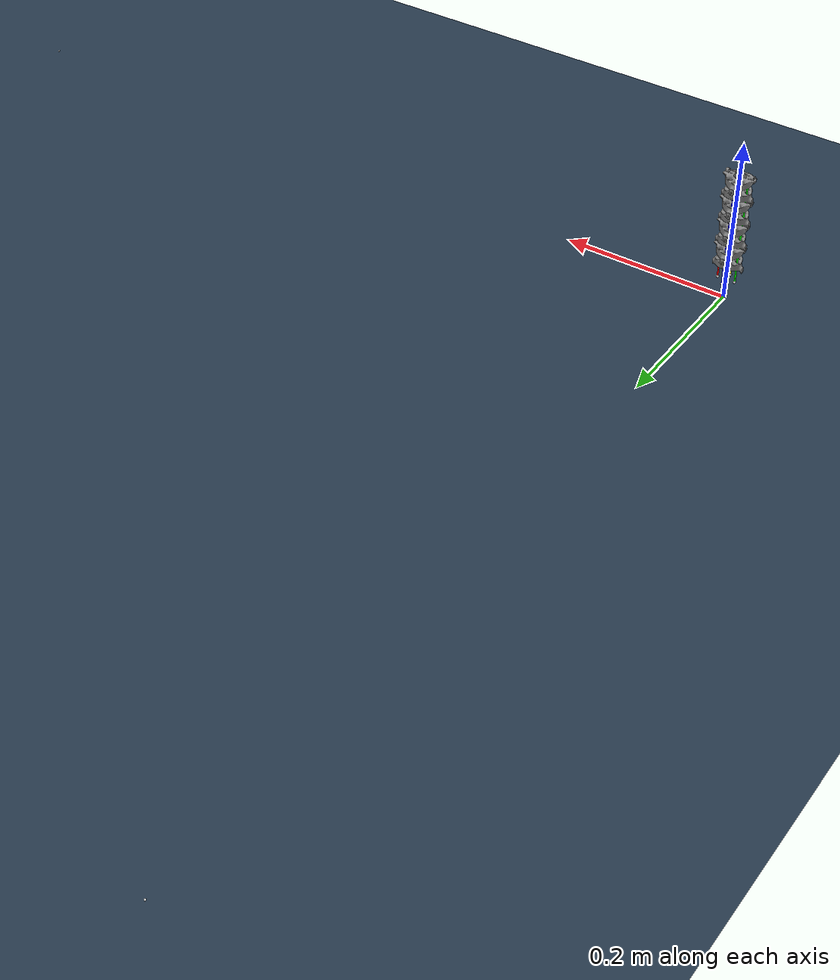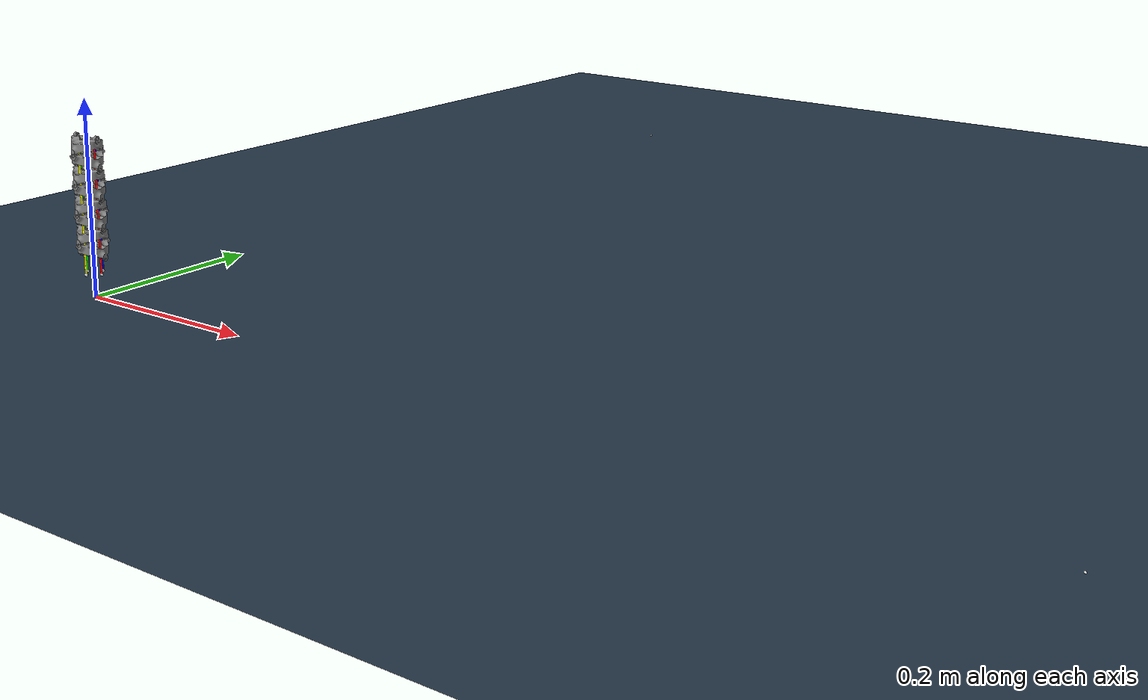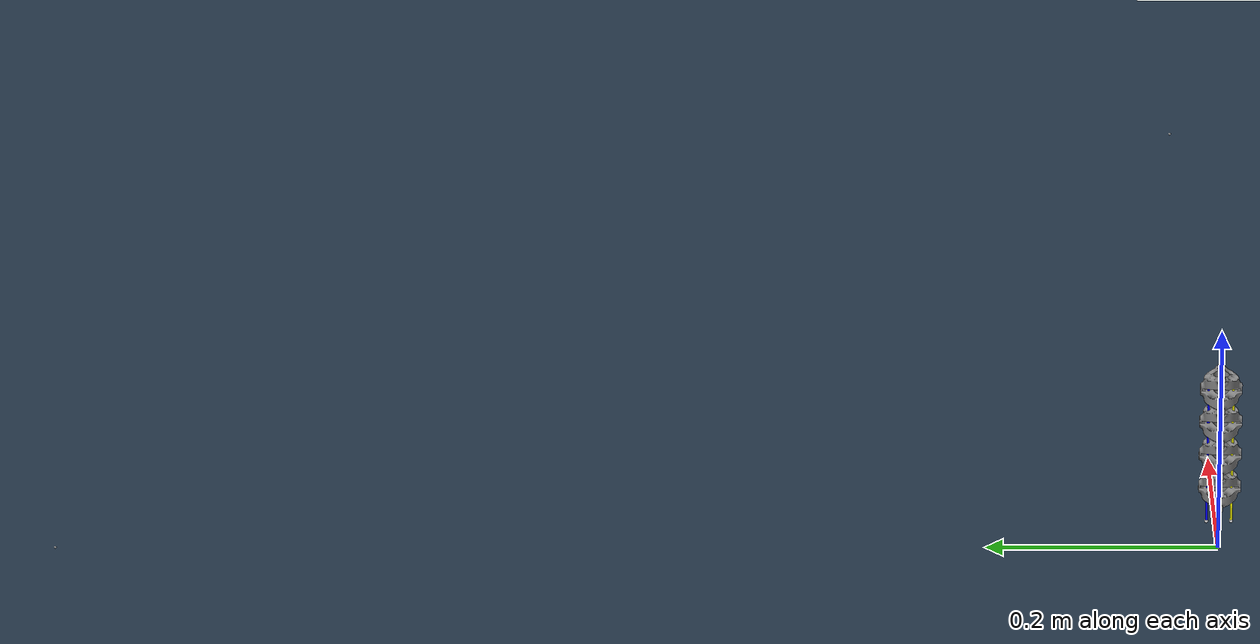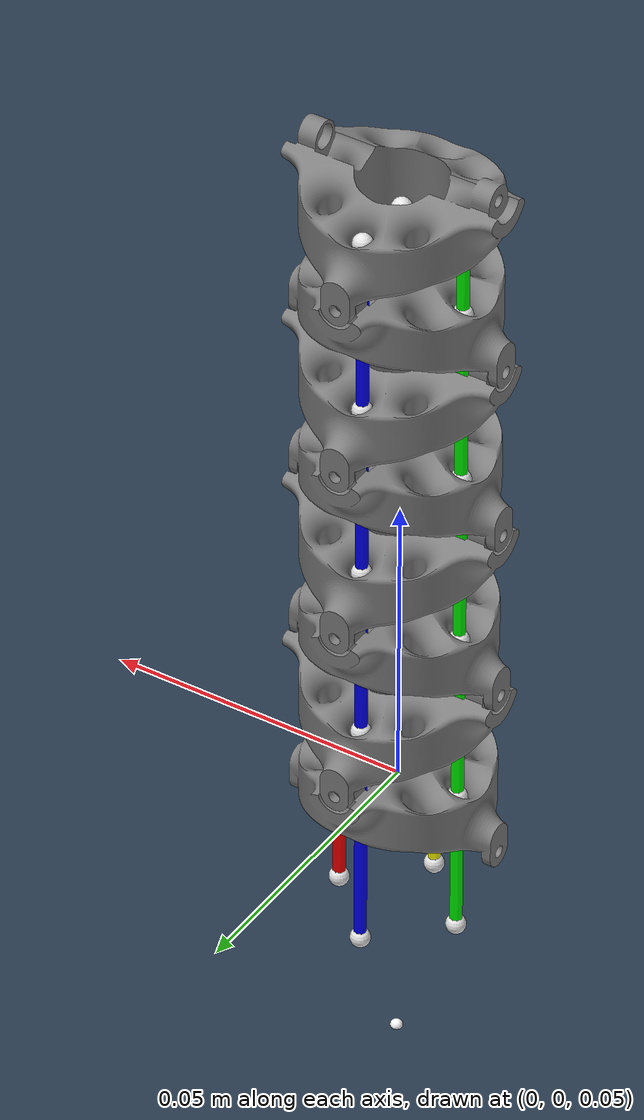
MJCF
<?xml version="1.0"?>
<mujoco model="continuum_robot">
    <compiler angle="degree" coordinate="local"/>
    <option integrator="Euler"/>

    <extension>
        <plugin plugin="mujoco.elasticity.cable"/>
    </extension>

    <compiler autolimits="true"/>

    <default>
        <joint limited="true" range="-35 35" stiffness="0.04" damping="0.01" armature="0.0001"/>
        <site rgba=".9 .9 .9 1" size="0.001625 0.001625 0.001625"/>
    <!-- 프록시(충돌 전용 슬리브) 공통 속성 -->
        <default class="proxy">
            <geom type="cylinder"
                contype="1" conaffinity="2"
                margin="0.001" solimp="0.9 0.995 0.001 2 0.1" solref="0.02 1"
                rgba="0.2 0.8 1 0.15" group="3"/>
      <!-- 보기 불편하면 Group 3 끄기 -->
        </default>

        <!-- STL(시각용) 공통 속성: 충돌 off -->
        <default class="comp">
            <geom contype="0" conaffinity="0"/>
        </default>
    </default>

    <asset>
        <!-- STL 로드 -->
        <mesh name="mesh_component2" file="meshes/mesh_component2.stl" scale="0.001 0.001 0.001"/>
        <!-- 환경(Plane) 로드 -->
        <texture name="texplane" type="2d" builtin="checker" rgb1=".2 .3 .4" rgb2=".1 0.15 0.2" width="512" height="512" mark="cross" markrgb=".8 .8 .8"/>
        <material name="matplane" reflectance="0.3" texture="texplane" texrepeat="1 1" texuniform="true"/>
    </asset>

    <worldbody>
        <!-- 조명 설정 -->
        <light directional="true" diffuse=".4 .4 .4" specular="0.1 0.1 0.1" pos="0 0 5.0" dir="0 0 -1" castshadow="false"/>
        <light directional="true" diffuse=".6 .6 .6" specular="0.2 0.2 0.2" pos="0 0 4" dir="0 0 -1"/>
        <!-- Plane 설정 -->
        <geom name="ground" type="plane" size="0 0 1" pos="0 0 0" quat="1 0 0 0" material="matplane" condim="1"/>

        <site name="world_axis" pos="0 0 0" size="0.001" rgba="1 1 1 1"/>
        <site name="world_axis_x" pos="1 0 0" size="0.001" rgba="1 1 1 1"/>
        <site name="world_axis_y" pos="0 1 0" size="0.001" rgba="1 1 1 1"/>

        <body name="base" pos="0 0 0">
            <joint name="base_slide" type="slide" axis="0 0 1" range="-0.01 0.01"/>
            <geom type="sphere" size="0.001" density="1000" rgba="0 0 0 0" contype="0" conaffinity="0"/>
            <site name="anchor_1" pos=" 0.0105  0      0.025"/>
            <site name="anchor_2" pos="-0.0105  0      0.025"/>
            <site name="anchor_3" pos=" 0       0.0105 0.025"/>
            <site name="anchor_4" pos=" 0      -0.0105 0.025"/>
        </body>

    <!-- ===================== STL_mesh ===================== -->
        <body name="comp_root" pos="0 0 0.05" quat="1 0 0 0">
            <geom name="geom_comp_root" class="comp" type="mesh" mesh="mesh_component2" pos="0 0 0"/>
            <joint name="rotation_root" type="hinge" axis="1 0 0" pos="0.01794 0 -0.0075"/>
            <site name="s1_1" pos="0.0105 0 0"/>
            <site name="s1_2" pos="-0.0105 0 0"/>
            <site name="s1_3" pos="0 0.0105 0"/>
            <site name="s1_4" pos="0 -0.0105 0"/>

            <body name="comp_1" pos="0 0 0.015" quat="0.70710678 0 0 -0.70710678">
                <joint name="rotation_1" type="hinge" axis="1 0 0" pos="0.01794 0 -0.0075"/>
                <!--joint axis: 이 조인트가 어느 방향으로 움직이는지, pos: 조인트의 앵커(회전/이동이 일어나는 점) 위치-->
                <geom name="geom_comp_1" class="comp" type="mesh" mesh="mesh_component2" pos="0 0 0" quat="1 0 0 0"/>
                <site name="s2_1" pos="0.0105 0 0"/>
                <site name="s2_2" pos="-0.0105 0 0"/>
                <site name="s2_3" pos="0 0.0105 0"/>
                <site name="s2_4" pos="0 -0.0105 0"/>

                <body name="comp_2" pos="0 0 0.015" quat="0.70710678 0 0 0.70710678">
                    <joint name="rotation_2" type="hinge" axis="1 0 0" pos="0.01794 0 -0.0075"/>
                    <geom name="geom_comp_2" class="comp" type="mesh" mesh="mesh_component2" pos="0 0 0" quat="1 0 0 0"/>
                    <site name="s3_1" pos="0.0105 0 0"/>
                    <site name="s3_2" pos="-0.0105 0 0"/>
                    <site name="s3_3" pos="0 0.0105 0"/>
                    <site name="s3_4" pos="0 -0.0105 0"/>

                    <body name="comp_3" pos="0 0 0.015" quat="0.70710678 0 0 -0.70710678">
                        <joint name="rotation_3" type="hinge" axis="1 0 0" pos="0.01794 0 -0.0075"/>
                        <geom name="geom_comp_3" class="comp" type="mesh" mesh="mesh_component2" pos="0 0 0" quat="1 0 0 0"/>
                        <site name="s4_1" pos="0.0105 0 0"/>
                        <site name="s4_2" pos="-0.0105 0 0"/>
                        <site name="s4_3" pos="0 0.0105 0"/>
                        <site name="s4_4" pos="0 -0.0105 0"/>

                        <body name="comp_4" pos="0 0 0.015" quat="0.70710678 0 0 0.70710678">
                            <joint name="rotation_4" type="hinge" axis="1 0 0" pos="0.01794 0 -0.0075"/>
                            <geom name="geom_comp_4" class="comp" type="mesh" mesh="mesh_component2" pos="0 0 0" quat="1 0 0 0"/>
                            <site name="s5_1" pos="0.0105 0 0"/>
                            <site name="s5_2" pos="-0.0105 0 0"/>
                            <site name="s5_3" pos="0 0.0105 0"/>
                            <site name="s5_4" pos="0 -0.0105 0"/>

                            <body name="comp_5" pos="0 0 0.015" quat="0.70710678 0 0 -0.70710678">
                                <joint name="rotation_5" type="hinge" axis="1 0 0" pos="0.01794 0 -0.0075"/>
                                <geom name="geom_comp_5" class="comp" type="mesh" mesh="mesh_component2" pos="0 0 0" quat="1 0 0 0"/>
                                <site name="s6_1" pos="0.0105 0 0"/>
                                <site name="s6_2" pos="-0.0105 0 0"/>
                                <site name="s6_3" pos="0 0.0105 0"/>
                                <site name="s6_4" pos="0 -0.0105 0"/>

                                <body name="comp_6" pos="0 0 0.015" quat="0.70710678 0 0 0.70710678">
                                    <joint name="rotation_6" type="hinge" axis="1 0 0" pos="0.01794 0 -0.0075"/>
                                    <geom name="geom_comp_6" class="comp" type="mesh" mesh="mesh_component2" pos="0 0 0" quat="1 0 0 0"/>
                                    <site name="s7_1" pos="0.0105 0 0"/>
                                    <site name="s7_2" pos="-0.0105 0 0"/>
                                    <site name="s7_3" pos="0 0.0105 0"/>
                                    <site name="s7_4" pos="0 -0.0105 0"/>

                                    <body name="comp_7" pos="0 0 0.015" quat="0.70710678 0 0 -0.70710678">
                                        <joint name="rotation_7" type="hinge" axis="1 0 0" pos="0.01794 0 -0.0075"/>
                                        <geom name="geom_comp_7" class="comp" type="mesh" mesh="mesh_component2" pos="0 0 0" quat="1 0 0 0"/>
                                        <site name="s8_1" pos="0.0105 0 0"/>
                                        <site name="s8_2" pos="-0.0105 0 0"/>
                                        <site name="s8_3" pos="0 0.0105 0"/>
                                        <site name="s8_4" pos="0 -0.0105 0"/>
                                        <site name="seg1_imu" pos="0 0 0"/>
                                    </body>
                                </body>
                            </body>
                        </body>
                    </body>
                </body>
            </body>
        </body>
    </worldbody>

    <tendon>
        <spatial name="tendon_1" width="0.0010" rgba="1 0 0 1" limited="true" range="0.0109 0.0111">
            <site site="anchor_1"/>
            <site site="s1_1"/>
            <site site="s2_3"/>
            <site site="s3_1"/>
            <site site="s4_3"/>
            <site site="s5_1"/>
            <site site="s6_3"/>
            <site site="s7_1"/>
            <site site="s8_3"/>
        </spatial>
        <spatial name="tendon_2" width="0.0010" rgba="0 1 0 1" limited="true" range="0.0109 0.0111">
            <site site="anchor_2"/>
            <site site="s1_2"/>
            <site site="s2_4"/>
            <site site="s3_2"/>
            <site site="s4_4"/>
            <site site="s5_2"/>
            <site site="s6_4"/>
            <site site="s7_2"/>
            <site site="s8_4"/>
        </spatial>
        <spatial name="tendon_3" width="0.0010" rgba="0 0 1 1" limited="true" range="0.0109 0.0111">
            <site site="anchor_3"/>
            <site site="s1_3"/>
            <site site="s2_2"/>
            <site site="s3_3"/>
            <site site="s4_2"/>
            <site site="s5_3"/>
            <site site="s6_2"/>
            <site site="s7_3"/>
            <site site="s8_2"/>
        </spatial>
        <spatial name="tendon_4" width="0.0010" rgba="1 1 0 1" limited="true" range="0.0109 0.0111">
            <site site="anchor_4"/>
            <site site="s1_4"/>
            <site site="s2_1"/>
            <site site="s3_4"/>
            <site site="s4_1"/>
            <site site="s5_4"/>
            <site site="s6_1"/>
            <site site="s7_4"/>
            <site site="s8_1"/>
        </spatial>
    </tendon>
    <actuator>
        <!-- tendon_1 에 장력 주는 모터 -->
        <motor name="cable_red" tendon="tendon_1"
            ctrllimited="true" ctrlrange="-5 5"/>

        <motor name="cable_green" tendon="tendon_2"
            ctrllimited="true" ctrlrange="-5 5"/>

        <motor name="cable_blue" tendon="tendon_3"
            ctrllimited="true" ctrlrange="-5 5"/>

        <motor name="cable_yellow" tendon="tendon_4"
            ctrllimited="true" ctrlrange="-5 5"/>
    </actuator>
    <sensor>
        <framequat name="imu_quat_seg1" objtype="site" objname="seg1_imu"/>
        <gyro name="imu_gyro_seg1" site="seg1_imu"/>
        <accelerometer name="imu_acc_seg1" site="seg1_imu"/>
    </sensor>
</mujoco>
